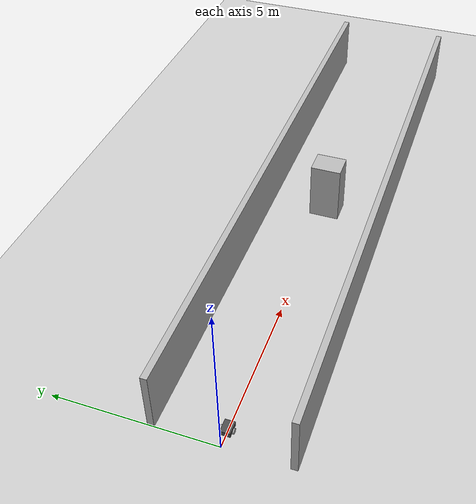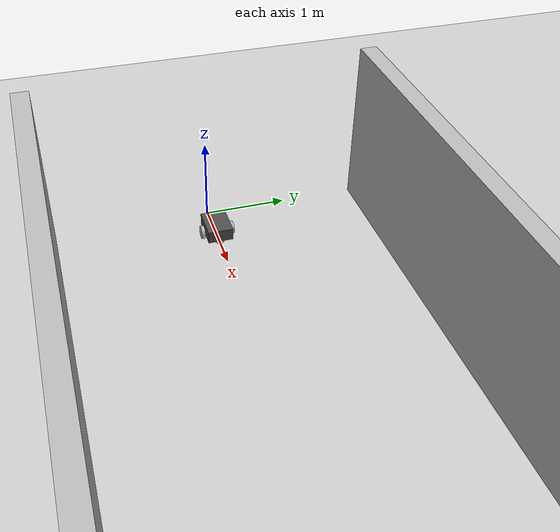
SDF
<?xml version="1.0"?>
<sdf version="1.8">
  <world name="degenerate_corridor">

    <plugin filename="gz-sim-physics-system" name="gz::sim::systems::Physics"/>
    <plugin filename="gz-sim-scene-broadcaster-system" name="gz::sim::systems::SceneBroadcaster"/>
    <plugin filename="gz-sim-user-commands-system" name="gz::sim::systems::UserCommands"/>

    <light type="directional" name="sun">
      <cast_shadows>true</cast_shadows>
      <pose>0 0 10 0 0 0</pose>
      <diffuse>0.8 0.8 0.8 1</diffuse>
      <direction>-0.5 0.1 -0.9</direction>
    </light>

    <model name="wall_north">
      <static>true</static>
      <pose>10 2 1 0 0 0</pose>
      <link name="link">
        <collision name="collision"><geometry><box><size>20 0.2 2</size></box></geometry></collision>
        <visual name="visual"><geometry><box><size>20 0.2 2</size></box></geometry></visual>
      </link>
    </model>

    <model name="wall_south">
      <static>true</static>
      <pose>10 -2 1 0 0 0</pose>
      <link name="link">
        <collision name="collision"><geometry><box><size>20 0.2 2</size></box></geometry></collision>
        <visual name="visual"><geometry><box><size>20 0.2 2</size></box></geometry></visual>
      </link>
    </model>

    <model name="wall_panel">
      <static>false</static>
      <pose>10 0 1 0 0 0</pose>
      <link name="link">
        <inertial><mass>50</mass><inertia><ixx>1</ixx><iyy>1</iyy><izz>1</izz><ixy>0</ixy><ixz>0</ixz><iyz>0</iyz></inertia></inertial>
        <collision name="collision"><geometry><box><size>0.8 1.0 2</size></box></geometry></collision>
        <visual name="visual"><geometry><box><size>0.8 1.0 2</size></box></geometry></visual>
      </link>
    </model>

    <model name="ground_plane">
      <static>true</static>
      <link name="link">
        <collision name="collision"><geometry><plane><normal>0 0 1</normal><size>25 6</size></plane></geometry></collision>
        <visual name="visual"><geometry><plane><normal>0 0 1</normal><size>25 6</size></plane></geometry></visual>
      </link>
    </model>

    <include>
      <uri>model://diff_drive_robot</uri>
      <name>robot</name>
      <pose>0.5 0 0.15 0 0 0</pose>
    </include>

  </world>
</sdf>

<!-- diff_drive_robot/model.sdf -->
<sdf version="1.8">
  <model name="diff_drive_robot">
    <pose>0 0 0.1 0 0 0</pose>

    <link name="chassis">
      <pose>0 0 0 0 0 0</pose>
      <inertial>
        <mass>8.0</mass>
        <inertia>
          <ixx>0.05</ixx><iyy>0.08</iyy><izz>0.10</izz>
          <ixy>0</ixy><ixz>0</ixz><iyz>0</iyz>
        </inertia>
      </inertial>
      <visual name="chassis_visual">
        <geometry><box><size>0.4 0.3 0.15</size></box></geometry>
        <material><ambient>0.3 0.3 0.3 1</ambient><diffuse>0.3 0.3 0.3 1</diffuse></material>
      </visual>
      <collision name="chassis_collision">
        <geometry><box><size>0.4 0.3 0.15</size></box></geometry>
      </collision>
    </link>

    <link name="left_wheel">
      <pose>0 0.18 -0.05 -1.5708 0 0</pose>
      <inertial>
        <mass>0.5</mass>
        <inertia><ixx>0.001</ixx><iyy>0.001</iyy><izz>0.001</izz><ixy>0</ixy><ixz>0</ixz><iyz>0</iyz></inertia>
      </inertial>
      <visual name="left_wheel_visual">
        <geometry><cylinder><radius>0.08</radius><length>0.04</length></cylinder></geometry>
      </visual>
      <collision name="left_wheel_collision">
        <geometry><cylinder><radius>0.08</radius><length>0.04</length></cylinder></geometry>
      </collision>
    </link>
    <joint name="left_wheel_joint" type="revolute">
      <parent>chassis</parent>
      <child>left_wheel</child>
      <axis><xyz>0 0 1</xyz><limit><lower>-1e16</lower><upper>1e16</upper></limit></axis>
    </joint>

    <link name="right_wheel">
      <pose>0 -0.18 -0.05 -1.5708 0 0</pose>
      <inertial>
        <mass>0.5</mass>
        <inertia><ixx>0.001</ixx><iyy>0.001</iyy><izz>0.001</izz><ixy>0</ixy><ixz>0</ixz><iyz>0</iyz></inertia>
      </inertial>
      <visual name="right_wheel_visual">
        <geometry><cylinder><radius>0.08</radius><length>0.04</length></cylinder></geometry>
      </visual>
      <collision name="right_wheel_collision">
        <geometry><cylinder><radius>0.08</radius><length>0.04</length></cylinder></geometry>
      </collision>
    </link>
    <joint name="right_wheel_joint" type="revolute">
      <parent>chassis</parent>
      <child>right_wheel</child>
      <axis><xyz>0 0 1</xyz><limit><lower>-1e16</lower><upper>1e16</upper></limit></axis>
    </joint>

    <link name="caster">
      <pose>0.15 0 -0.1 0 0 0</pose>
      <inertial>
        <mass>0.2</mass>
        <inertia><ixx>0.0001</ixx><iyy>0.0001</iyy><izz>0.0001</izz><ixy>0</ixy><ixz>0</ixz><iyz>0</iyz></inertia>
      </inertial>
      <visual name="caster_visual"><geometry><sphere><radius>0.05</radius></sphere></geometry></visual>
      <collision name="caster_collision"><geometry><sphere><radius>0.05</radius></sphere></geometry></collision>
    </link>
    <joint name="caster_joint" type="fixed">
      <parent>chassis</parent>
      <child>caster</child>
    </joint>

    <plugin filename="gz-sim-diff-drive-system" name="gz::sim::systems::DiffDrive">
      <left_joint>left_wheel_joint</left_joint>
      <right_joint>right_wheel_joint</right_joint>
      <wheel_separation>0.36</wheel_separation>
      <wheel_radius>0.08</wheel_radius>
      <odom_publish_frequency>20</odom_publish_frequency>
      <topic>cmd_vel</topic>
      <odom_topic>odometry</odom_topic>
    </plugin>

  </model>
</sdf>
